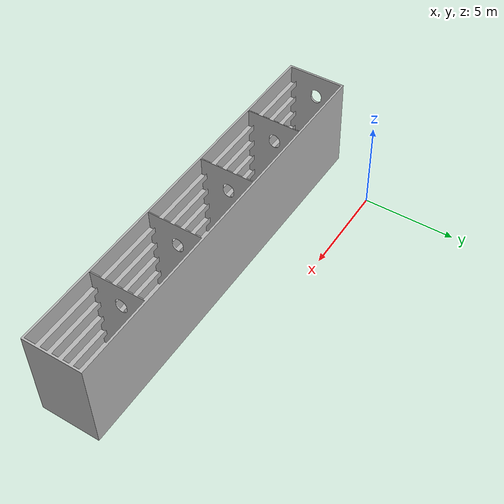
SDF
<?xml version="1.0"?>
<sdf version="1.5">
  <model name= "bwt_4x3" >
    <static>true</static>
    <link name="link">
      <collision name="collision">
        <geometry>
          <mesh>
            <uri>model://bwt_4x3/meshes/bwt_4x3_bottom_mh.stl</uri>
          </mesh>
        </geometry>
      </collision>
      <visual name="visual">
        <geometry>
          <mesh>
            <uri>model://bwt_4x3/meshes/bwt_4x3_bottom_mh.stl</uri>
          </mesh>
        </geometry>
      </visual>
    </link>
  </model>
</sdf>
